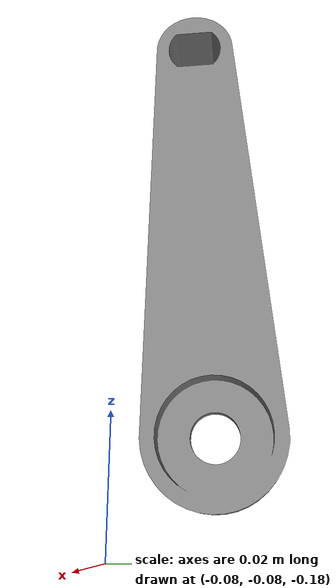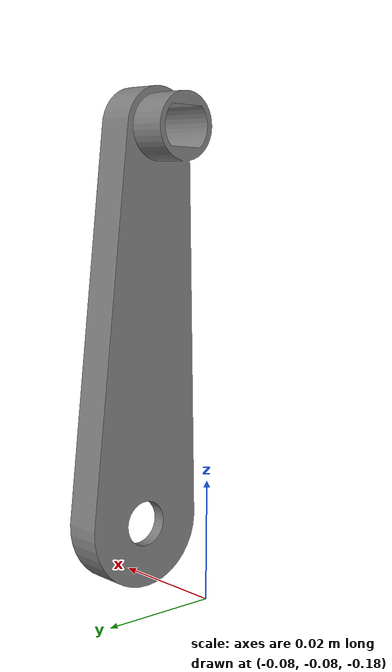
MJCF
<?xml version="1.0" encoding="UTF-8"?>
<mujoco>
<compiler meshdir="assets"/>
  <asset>
    <mesh file="2026_fei_ka_lun_tui____right_behind_thigh_1__lun_tui_xiao_tui__1.stl"/>
  </asset>

  <default>
  <default class="right_behind_thigh_default">
  <geom contype="0" conaffinity="0"/>
  </default>
  </default>

  <worldbody>
  <body name="right_behind_thigh_body" pos="0 0 0">
    <geom type="mesh" mesh="2026_fei_ka_lun_tui____right_behind_thigh_1__lun_tui_xiao_tui__1" mass="0.0091" class="right_behind_thigh_default"/>
  </body>
  </worldbody>
</mujoco>
